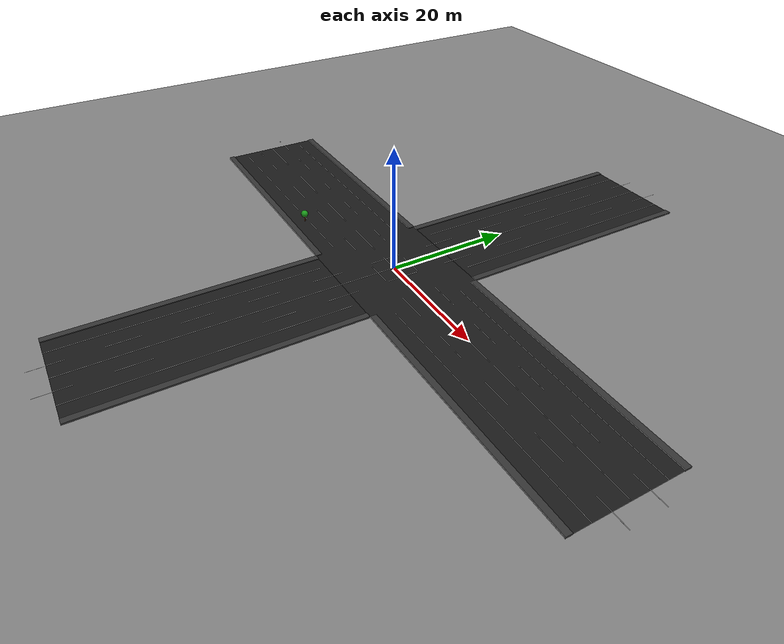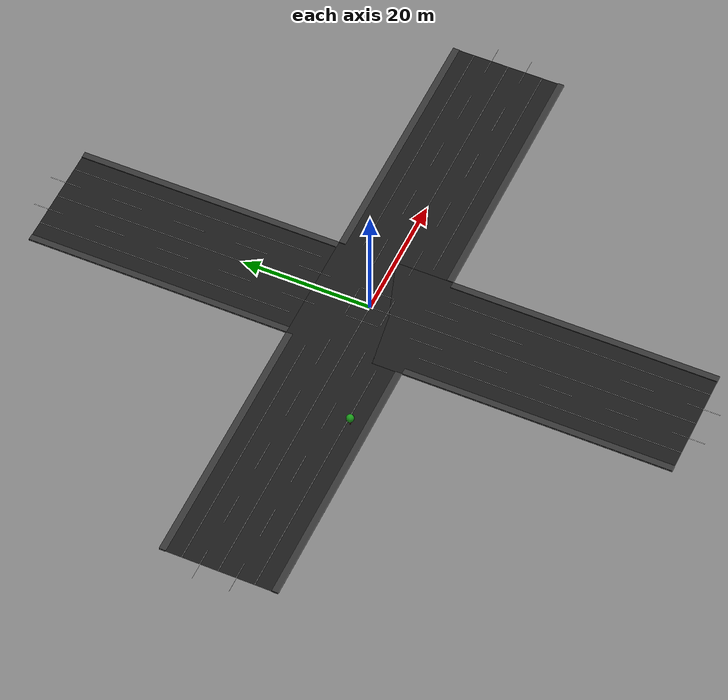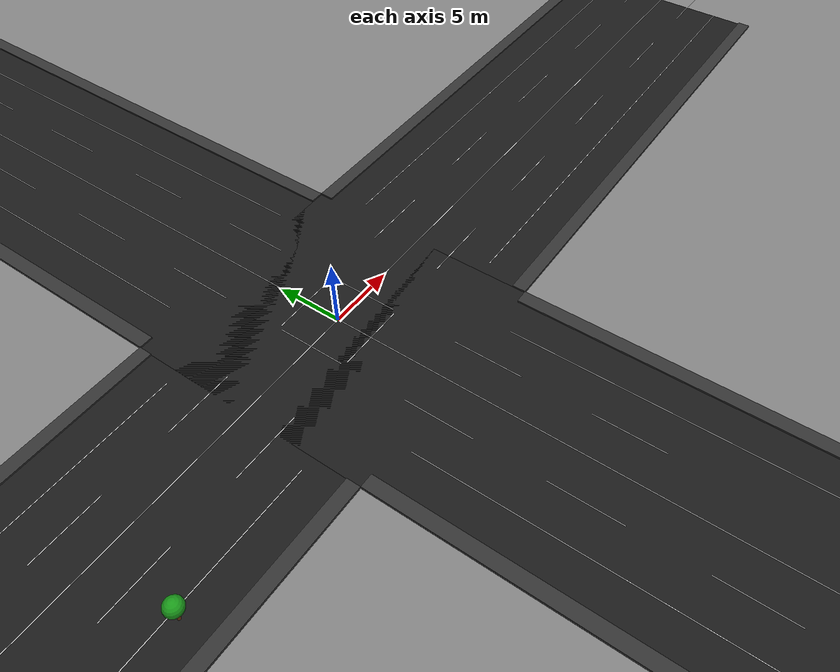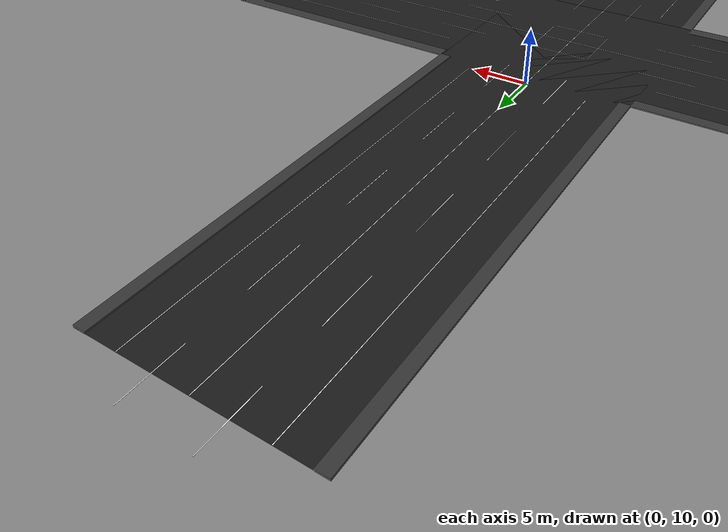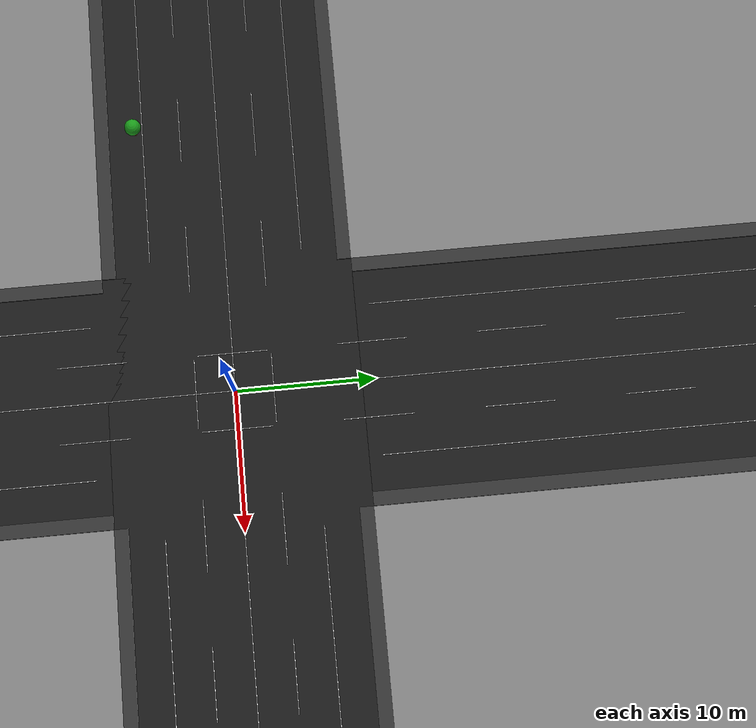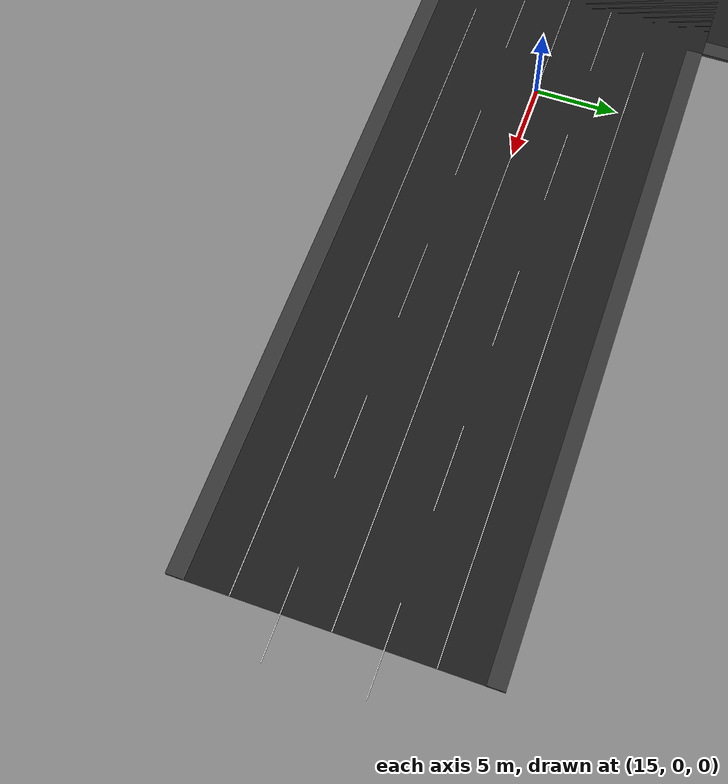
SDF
<sdf version="1.6">
 <world name="road_world">
  <gravity>0 0 -9.8000000000000007</gravity>
  <physics type="ode">
   <max_step_size>0.01</max_step_size>
   <real_time_factor>1</real_time_factor>
   <real_time_update_rate>1000</real_time_update_rate>
  </physics>
  <plugin name="ignition::gazebo::systems::Physics" filename="libignition-gazebo-physics-system.so"/>
  <plugin name="ignition::gazebo::systems::UserCommands" filename="libignition-gazebo-user-commands-system.so"/>
  <plugin name="ignition::gazebo::systems::SceneBroadcaster" filename="libignition-gazebo-scene-broadcaster-system.so"/>
  <plugin name="ignition::gazebo::systems::Imu" filename="ignition-gazebo-imu-system"/>
  <plugin name="ignition::gazebo::systems::Sensors" filename="ignition-gazebo-sensors-system">
   <render_engine>ogre2</render_engine>
  </plugin>
  <scene><grid>false</grid></scene>
  <light name="sun" type="directional">
   <pose>0 0 10 0 0 0</pose>
   <diffuse>1 1 1 1</diffuse>
   <specular>0.1 0.1 0.1 1</specular>
   <direction>-0.5 0.5 -1</direction>
  </light>
  <model name="ground">
   <static>true</static>
   <link name="link">
    <collision name="collision">
     <geometry><plane><normal>0 0 1</normal><size>100 100</size></plane></geometry>
    </collision>
    <visual name="visual">
     <geometry><plane><normal>0 0 1</normal><size>100 100</size></plane></geometry>
     <material><ambient>0.5 0.5 0.5 1</ambient><diffuse>0.5 0.5 0.5 1</diffuse></material>
    </visual>
   </link>
  </model>
  <model name="main_road">
   <static>true</static>
   <pose>0 0 0.01 0 0 0</pose>
   <link name="link">
    <visual name="main_road_vis">
     <geometry><box><size>100 18 0.02</size></box></geometry>
     <material><ambient>0.1 0.1 0.1 1</ambient><diffuse>0.1 0.1 0.1 1</diffuse></material>
    </visual>
   </link>
  </model>
  <model name="side_road">
   <static>true</static>
   <pose>0 0 0.01 0 0 0</pose>
   <link name="link">
    <visual name="side_road_vis">
     <geometry><box><size>18 100 0.02</size></box></geometry>
     <material><ambient>0.1 0.1 0.1 1</ambient><diffuse>0.1 0.1 0.1 1</diffuse></material>
    </visual>
   </link>
  </model>
  <model name="pavement_main_left">
   <static>true</static>
   <pose>29.5 -8.5 0.02 0 0 0</pose>
   <link name="link">
    <visual name="pavement_vis">
     <geometry><box><size>41 1 0.25</size></box></geometry>
     <material><ambient>0.2 0.2 0.2 1</ambient><diffuse>0.2 0.2 0.2 1</diffuse></material>
    </visual>
   </link>
  </model>
  <model name="pavement_main_left2">
   <static>true</static>
   <pose>-29.5 -8.5 0.02 0 0 0</pose>
   <link name="link">
    <visual name="pavement_vis">
     <geometry><box><size>41 1 0.25</size></box></geometry>
     <material><ambient>0.2 0.2 0.2 1</ambient><diffuse>0.2 0.2 0.2 1</diffuse></material>
    </visual>
   </link>
  </model>
  <model name="pavement_main_right">
   <static>true</static>
   <pose>29.5 8.5 0.02 0 0 0</pose>
   <link name="link">
    <visual name="pavement_vis">
     <geometry><box><size>41 1 0.25</size></box></geometry>
     <material><ambient>0.2 0.2 0.2 1</ambient><diffuse>0.2 0.2 0.2 1</diffuse></material>
    </visual>
   </link>
  </model>
  <model name="pavement_main_right2">
   <static>true</static>
   <pose>-29.5 8.5 0.02 0 0 0</pose>
   <link name="link">
    <visual name="pavement_vis">
     <geometry><box><size>41 1 0.25</size></box></geometry>
     <material><ambient>0.2 0.2 0.2 1</ambient><diffuse>0.2 0.2 0.2 1</diffuse></material>
    </visual>
   </link>
  </model>
  <model name="pavement_side_left">
   <static>true</static>
   <pose>-8.5 29.5 0.02 0 0 0</pose>
   <link name="link">
    <visual name="pavement_vis">
     <geometry><box><size>1 41 0.25</size></box></geometry>
     <material><ambient>0.2 0.2 0.2 1</ambient><diffuse>0.2 0.2 0.2 1</diffuse></material>
    </visual>
   </link>
  </model>
  <model name="pavement_side_left2">
   <static>true</static>
   <pose>-8.5 -29.5 0.02 0 0 0</pose>
   <link name="link">
    <visual name="pavement_vis">
     <geometry><box><size>1 41 0.25</size></box></geometry>
     <material><ambient>0.2 0.2 0.2 1</ambient><diffuse>0.2 0.2 0.2 1</diffuse></material>
    </visual>
   </link>
  </model>
  <model name="pavement_side_right">
   <static>true</static>
   <pose>8.5 29.5 0.02 0 0 0</pose>
   <link name="link">
    <visual name="pavement_vis">
     <geometry><box><size>1 41 0.25</size></box></geometry>
     <material><ambient>0.2 0.2 0.2 1</ambient><diffuse>0.2 0.2 0.2 1</diffuse></material>
    </visual>
   </link>
  </model>
  <model name="pavement_side_right2">
   <static>true</static>
   <pose>8.5 -29.5 0.02 0 0 0</pose>
   <link name="link">
    <visual name="pavement_vis">
     <geometry><box><size>1 41 0.25</size></box></geometry>
     <material><ambient>0.2 0.2 0.2 1</ambient><diffuse>0.2 0.2 0.2 1</diffuse></material>
    </visual>
   </link>
  </model>
  <model name="lane_main">
   <static>true</static>
   <pose>0 0 0.03 0 0 0</pose>
   <link name="link">
    <visual name="lane_line_main">
     <geometry><box><size>100 0.05 0.01</size></box></geometry>
     <material><ambient>1 1 1 1</ambient><diffuse>1 1 1 1</diffuse></material>
    </visual>
   </link>
  </model>
  <model name="lane_main2">
   <static>true</static>
   <pose>30 -5.5 0.03 0 0 0</pose>
   <link name="link">
    <visual name="lane_line_main">
     <geometry><box><size>40 0.05 0.01</size></box></geometry>
     <material><ambient>1 1 1 1</ambient><diffuse>1 1 1 1</diffuse></material>
    </visual>
   </link>
  </model>
  <model name="lane_main3">
   <static>true</static>
   <pose>-30 -5.5 0.03 0 0 0</pose>
   <link name="link">
    <visual name="lane_line_main">
     <geometry><box><size>40 0.05 0.01</size></box></geometry>
     <material><ambient>1 1 1 1</ambient><diffuse>1 1 1 1</diffuse></material>
    </visual>
   </link>
  </model>
  <model name="lane_main4">
   <static>true</static>
   <pose>-30 5.5 0.03 0 0 0</pose>
   <link name="link">
    <visual name="lane_line_main">
     <geometry><box><size>40 0.05 0.01</size></box></geometry>
     <material><ambient>1 1 1 1</ambient><diffuse>1 1 1 1</diffuse></material>
    </visual>
   </link>
  </model>
  <model name="lane_main5">
   <static>true</static>
   <pose>30 5.5 0.03 0 0 0</pose>
   <link name="link">
    <visual name="lane_line_main">
     <geometry><box><size>40 0.05 0.01</size></box></geometry>
     <material><ambient>1 1 1 1</ambient><diffuse>1 1 1 1</diffuse></material>
    </visual>
   </link>
  </model>
  <model name="lane_side">
   <static>true</static>
   <pose>0 0 0.03 0 0 0</pose>
   <link name="link">
    <visual name="lane_line_side">
     <geometry><box><size>0.05 100 0.01</size></box></geometry>
     <material><ambient>1 1 1 1</ambient><diffuse>1 1 1 1</diffuse></material>
    </visual>
   </link>
  </model>
  <model name="lane_side2">
   <static>true</static>
   <pose>-5.5 -30 0.03 0 0 0</pose>
   <link name="link">
    <visual name="lane_line_side">
     <geometry><box><size>0.05 40 0.01</size></box></geometry>
     <material><ambient>1 1 1 1</ambient><diffuse>1 1 1 1</diffuse></material>
    </visual>
   </link>
  </model>
  <model name="lane_side3">
   <static>true</static>
   <pose>-5.5 30 0.03 0 0 0</pose>
   <link name="link">
    <visual name="lane_line_side">
     <geometry><box><size>0.05 40 0.01</size></box></geometry>
     <material><ambient>1 1 1 1</ambient><diffuse>1 1 1 1</diffuse></material>
    </visual>
   </link>
  </model>
  <model name="lane_side4">
   <static>true</static>
   <pose>5.5 -30 0.03 0 0 0</pose>
   <link name="link">
    <visual name="lane_line_side">
     <geometry><box><size>0.05 40 0.01</size></box></geometry>
     <material><ambient>1 1 1 1</ambient><diffuse>1 1 1 1</diffuse></material>
    </visual>
   </link>
  </model>
  <model name="lane_side5">
   <static>true</static>
   <pose>5.5 30 0.03 0 0 0</pose>
   <link name="link">
    <visual name="lane_line_side">
     <geometry><box><size>0.05 40 0.01</size></box></geometry>
     <material><ambient>1 1 1 1</ambient><diffuse>1 1 1 1</diffuse></material>
    </visual>
   </link>
  </model>
  <include>
   <uri>/home/mina/aerv_ws/src/aerv_control/worlds/lane.sdf</uri>
   <name>lane1</name>
   <pose>0 2.75 0.03 0 0 1.5708</pose>
  </include>
  <include>
   <uri>/home/mina/aerv_ws/src/aerv_control/worlds/lane.sdf</uri>
   <name>lane2</name>
   <pose>10 2.75 0.03 0 0 1.5708</pose>
  </include>
  <include>
   <uri>/home/mina/aerv_ws/src/aerv_control/worlds/lane.sdf</uri>
   <name>lane3</name>
   <pose>20 2.75 0.03 0 0 1.5708</pose>
  </include>
  <include>
   <uri>/home/mina/aerv_ws/src/aerv_control/worlds/lane.sdf</uri>
   <name>lane4</name>
   <pose>30 2.75 0.03 0 0 1.5708</pose>
  </include>
  <include>
   <uri>/home/mina/aerv_ws/src/aerv_control/worlds/lane.sdf</uri>
   <name>lane5</name>
   <pose>-10 2.75 0.03 0 0 1.5708</pose>
  </include>
  <include>
   <uri>/home/mina/aerv_ws/src/aerv_control/worlds/lane.sdf</uri>
   <name>lane6</name>
   <pose>-20 2.75 0.03 0 0 1.5708</pose>
  </include>
  <include>
   <uri>/home/mina/aerv_ws/src/aerv_control/worlds/lane.sdf</uri>
   <name>lane7</name>
   <pose>-30 2.75 0.03 0 0 1.5708</pose>
  </include>
  <include>
   <uri>/home/mina/aerv_ws/src/aerv_control/worlds/lane.sdf</uri>
   <name>lane8</name>
   <pose>40 2.75 0.03 0 0 1.5708</pose>
  </include>
  <include>
   <uri>/home/mina/aerv_ws/src/aerv_control/worlds/lane.sdf</uri>
   <name>lane9</name>
   <pose>50 2.75 0.03 0 0 1.5708</pose>
  </include>
  <include>
   <uri>/home/mina/aerv_ws/src/aerv_control/worlds/lane.sdf</uri>
   <name>lane10</name>
   <pose>-40 2.75 0.03 0 0 1.5708</pose>
  </include>
  <include>
   <uri>/home/mina/aerv_ws/src/aerv_control/worlds/lane.sdf</uri>
   <name>lane11</name>
   <pose>-50 2.75 0.03 0 0 1.5708</pose>
  </include>
  <include>
   <uri>/home/mina/aerv_ws/src/aerv_control/worlds/lane.sdf</uri>
   <name>lane12</name>
   <pose>0 -2.75 0.03 0 0 1.5708</pose>
  </include>
  <include>
   <uri>/home/mina/aerv_ws/src/aerv_control/worlds/lane.sdf</uri>
   <name>lane13</name>
   <pose>10 -2.75 0.03 0 0 1.5708</pose>
  </include>
  <include>
   <uri>/home/mina/aerv_ws/src/aerv_control/worlds/lane.sdf</uri>
   <name>lane14</name>
   <pose>20 -2.75 0.03 0 0 1.5708</pose>
  </include>
  <include>
   <uri>/home/mina/aerv_ws/src/aerv_control/worlds/lane.sdf</uri>
   <name>lane15</name>
   <pose>30 -2.75 0.03 0 0 1.5708</pose>
  </include>
  <include>
   <uri>/home/mina/aerv_ws/src/aerv_control/worlds/lane.sdf</uri>
   <name>lane16</name>
   <pose>-10 -2.75 0.03 0 0 1.5708</pose>
  </include>
  <include>
   <uri>/home/mina/aerv_ws/src/aerv_control/worlds/lane.sdf</uri>
   <name>lane17</name>
   <pose>-20 -2.75 0.03 0 0 1.5708</pose>
  </include>
  <include>
   <uri>/home/mina/aerv_ws/src/aerv_control/worlds/lane.sdf</uri>
   <name>lane18</name>
   <pose>-30 -2.75 0.03 0 0 1.5708</pose>
  </include>
  <include>
   <uri>/home/mina/aerv_ws/src/aerv_control/worlds/lane.sdf</uri>
   <name>lane19</name>
   <pose>40 -2.75 0.03 0 0 1.5708</pose>
  </include>
  <include>
   <uri>/home/mina/aerv_ws/src/aerv_control/worlds/lane.sdf</uri>
   <name>lane20</name>
   <pose>50 -2.75 0.03 0 0 1.5708</pose>
  </include>
  <include>
   <uri>/home/mina/aerv_ws/src/aerv_control/worlds/lane.sdf</uri>
   <name>lane21</name>
   <pose>-40 -2.75 0.03 0 0 1.5708</pose>
  </include>
  <include>
   <uri>/home/mina/aerv_ws/src/aerv_control/worlds/lane.sdf</uri>
   <name>lane22</name>
   <pose>-50 -2.75 0.03 0 0 1.5708</pose>
  </include>
  <include>
   <uri>/home/mina/aerv_ws/src/aerv_control/worlds/lane.sdf</uri>
   <name>lane23</name>
   <pose>2.75 0 0.03 0 0 0</pose>
  </include>
  <include>
   <uri>/home/mina/aerv_ws/src/aerv_control/worlds/lane.sdf</uri>
   <name>lane24</name>
   <pose>2.75 10 0.03 0 0 0</pose>
  </include>
  <include>
   <uri>/home/mina/aerv_ws/src/aerv_control/worlds/lane.sdf</uri>
   <name>lane25</name>
   <pose>2.75 20 0.03 0 0 0</pose>
  </include>
  <include>
   <uri>/home/mina/aerv_ws/src/aerv_control/worlds/lane.sdf</uri>
   <name>lane26</name>
   <pose>2.75 30 0.03 0 0 0</pose>
  </include>
  <include>
   <uri>/home/mina/aerv_ws/src/aerv_control/worlds/lane.sdf</uri>
   <name>lane27</name>
   <pose>2.75 -10 0.03 0 0 0</pose>
  </include>
  <include>
   <uri>/home/mina/aerv_ws/src/aerv_control/worlds/lane.sdf</uri>
   <name>lane28</name>
   <pose>2.75 -20 0.03 0 0 0</pose>
  </include>
  <include>
   <uri>/home/mina/aerv_ws/src/aerv_control/worlds/lane.sdf</uri>
   <name>lane29</name>
   <pose>2.75 30 0.03 0 0 0</pose>
  </include>
  <include>
   <uri>/home/mina/aerv_ws/src/aerv_control/worlds/lane.sdf</uri>
   <name>lane30</name>
   <pose>2.75 40 0.03 0 0 0</pose>
  </include>
  <include>
   <uri>/home/mina/aerv_ws/src/aerv_control/worlds/lane.sdf</uri>
   <name>lane31</name>
   <pose>2.75 50 0.03 0 0 0</pose>
  </include>
  <include>
   <uri>/home/mina/aerv_ws/src/aerv_control/worlds/lane.sdf</uri>
   <name>lane32</name>
   <pose>2.75 -40 0.03 0 0 0</pose>
  </include>
  <include>
   <uri>/home/mina/aerv_ws/src/aerv_control/worlds/lane.sdf</uri>
   <name>lane33</name>
   <pose>2.75 -50 0.03 0 0 0</pose>
  </include>
  <include>
   <uri>/home/mina/aerv_ws/src/aerv_control/worlds/lane.sdf</uri>
   <name>lane34</name>
   <pose>-2.75 0 0.03 0 0 0</pose>
  </include>
  <include>
   <uri>/home/mina/aerv_ws/src/aerv_control/worlds/lane.sdf</uri>
   <name>lane35</name>
   <pose>-2.75 10 0.03 0 0 0</pose>
  </include>
  <include>
   <uri>/home/mina/aerv_ws/src/aerv_control/worlds/lane.sdf</uri>
   <name>lane36</name>
   <pose>-2.75 20 0.03 0 0 0</pose>
  </include>
  <include>
   <uri>/home/mina/aerv_ws/src/aerv_control/worlds/lane.sdf</uri>
   <name>lane37</name>
   <pose>-2.75 30 0.03 0 0 0</pose>
  </include>
  <include>
   <uri>/home/mina/aerv_ws/src/aerv_control/worlds/lane.sdf</uri>
   <name>lane38</name>
   <pose>-2.75 -10 0.03 0 0 0</pose>
  </include>
  <include>
   <uri>/home/mina/aerv_ws/src/aerv_control/worlds/lane.sdf</uri>
   <name>lane39</name>
   <pose>-2.75 -20 0.03 0 0 0</pose>
  </include>
  <include>
   <uri>/home/mina/aerv_ws/src/aerv_control/worlds/lane.sdf</uri>
   <name>lane40</name>
   <pose>-2.75 -30 0.03 0 0 0</pose>
  </include>
  <include>
   <uri>/home/mina/aerv_ws/src/aerv_control/worlds/lane.sdf</uri>
   <name>lane41</name>
   <pose>-2.75 40 0.03 0 0 0</pose>
  </include>
  <include>
   <uri>/home/mina/aerv_ws/src/aerv_control/worlds/lane.sdf</uri>
   <name>lane42</name>
   <pose>-2.75 50 0.03 0 0 0</pose>
  </include>
  <include>
   <uri>/home/mina/aerv_ws/src/aerv_control/worlds/lane.sdf</uri>
   <name>lane43</name>
   <pose>-2.75 -40 0.03 0 0 0</pose>
  </include>
  <include>
   <uri>/home/mina/aerv_ws/src/aerv_control/worlds/lane.sdf</uri>
   <name>lane44</name>
   <pose>-2.75 -50 0.03 0 0 0</pose>
  </include>
  <model name="tree1">
   <static>true</static>
   <pose>-20 -6 0 0 0 0</pose>
   <link name="link">
    <visual name="trunk">
     <geometry><cylinder><radius>0.1</radius><length>1.0</length></cylinder></geometry>
     <material><ambient>0.5 0.25 0.1 1</ambient><diffuse>0.5 0.25 0.1 1</diffuse></material>
     <pose>0 0 0.5 0 0 0</pose>
    </visual>
    <visual name="leaves">
     <geometry><sphere><radius>0.6</radius></sphere></geometry>
     <material><ambient>0.1 0.6 0.1 1</ambient><diffuse>0.1 0.6 0.1 1</diffuse></material>
     <pose>0 0 1.4 0 0 0</pose>
    </visual>
   </link>
  </model>
 </world>
</sdf>

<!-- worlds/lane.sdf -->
<sdf version="1.6">

    <model name="lane">
      <static>true</static>
      <pose>5.5 30 0.03 0 0 0</pose>
      <link name="link">
        <visual name="lane_line_side">
          <geometry>
            <box>
              <size>0.05 5 0.01</size>
            </box>
          </geometry>
          <material>
            <ambient>1 1 1 1</ambient>
            <diffuse>1 1 1 1</diffuse>
          </material>
        </visual>
      </link>
    </model>

</sdf>
